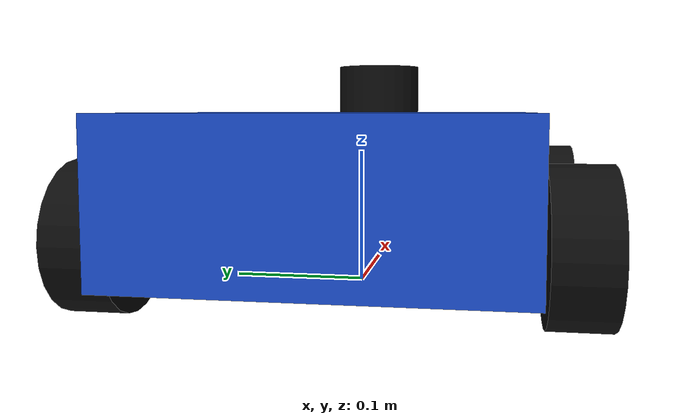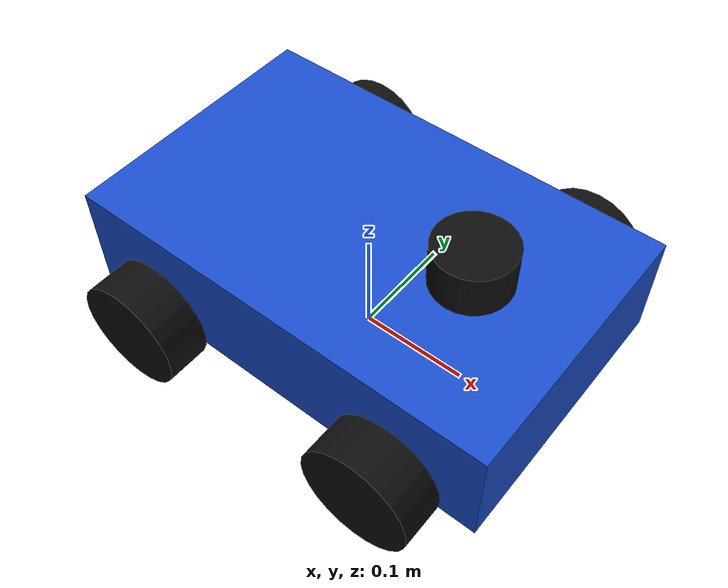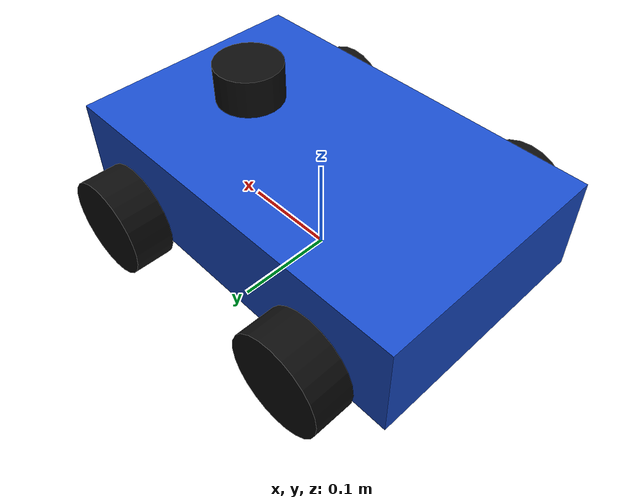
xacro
<?xml version="1.0"?>
<robot xmlns:xacro="http://www.ros.org/wiki/xacro" name="four_wheel_robot">

  <!-- Dimensions (meters / kg) -->
  <xacro:property name="chassis_l" value="0.40"/>
  <xacro:property name="chassis_w" value="0.25"/>
  <xacro:property name="chassis_h" value="0.10"/>
  <xacro:property name="chassis_m" value="5.0"/>
  <xacro:property name="wheel_r" value="0.05"/>
  <xacro:property name="wheel_w" value="0.04"/>
  <xacro:property name="wheel_m" value="0.5"/>
  <xacro:property name="wheel_x" value="0.12"/>
  <xacro:property name="wheel_y" value="0.15"/>

  <material name="blue"><color rgba="0.1 0.3 0.8 1"/></material>
  <material name="black"><color rgba="0.05 0.05 0.05 1"/></material>

  <!-- Links -->
  <link name="base_footprint"/>

  <joint name="base_footprint_joint" type="fixed">
    <parent link="base_footprint"/>
    <child link="base_link"/>
    <origin xyz="0 0 ${wheel_r + 0.03}" rpy="0 0 0"/>
  </joint>

  <link name="base_link">
    <visual>
      <geometry><box size="${chassis_l} ${chassis_w} ${chassis_h}"/></geometry>
      <material name="blue"/>
    </visual>
    <collision>
      <geometry><box size="${chassis_l} ${chassis_w} ${chassis_h}"/></geometry>
    </collision>
    <inertial>
      <mass value="${chassis_m}"/>
      <inertia ixx="0.0302" ixy="0" ixz="0" iyy="0.0708" iyz="0" izz="0.0927"/>
    </inertial>
  </link>

  <!-- Wheel macro: y_sign = +1 left, -1 right -->
  <xacro:macro name="wheel" params="name x y">
    <link name="${name}">
      <visual>
        <geometry><cylinder radius="${wheel_r}" length="${wheel_w}"/></geometry>
        <material name="black"/>
      </visual>
      <collision>
        <geometry><cylinder radius="${wheel_r}" length="${wheel_w}"/></geometry>
      </collision>
      <inertial>
        <mass value="${wheel_m}"/>
        <inertia ixx="0.000379" ixy="0" ixz="0" iyy="0.000379" iyz="0" izz="0.000625"/>
      </inertial>
    </link>

    <joint name="${name}_joint" type="continuous">
      <parent link="base_link"/>
      <child link="${name}"/>
      <origin xyz="${x} ${y} -0.03" rpy="-1.5708 0 0"/>
      <axis xyz="0 0 1"/>
    </joint>

    <gazebo reference="${name}">
      <mu1>1.0</mu1>
      <mu2>0.3</mu2>
      <kp>1000000.0</kp>
      <kd>100.0</kd>
    </gazebo>
  </xacro:macro>

  <xacro:wheel name="front_left_wheel"  x="${wheel_x}"  y="${wheel_y}"/>
  <xacro:wheel name="rear_left_wheel"   x="${-wheel_x}" y="${wheel_y}"/>
  <xacro:wheel name="front_right_wheel" x="${wheel_x}"  y="${-wheel_y}"/>
  <xacro:wheel name="rear_right_wheel"  x="${-wheel_x}" y="${-wheel_y}"/>

  <!-- Lidar -->
  <link name="lidar_link">
    <visual>
      <geometry><cylinder radius="0.035" length="0.04"/></geometry>
      <material name="black"/>
    </visual>
    <collision>
      <geometry><cylinder radius="0.035" length="0.04"/></geometry>
    </collision>
    <inertial>
      <mass value="0.1"/>
      <inertia ixx="0.0001" ixy="0" ixz="0" iyy="0.0001" iyz="0" izz="0.0001"/>
    </inertial>
  </link>

  <joint name="lidar_joint" type="fixed">
    <parent link="base_link"/>
    <child link="lidar_link"/>
    <origin xyz="0.1 0 0.07" rpy="0 0 0"/>
  </joint>

  <gazebo reference="lidar_link">
    <sensor name="lidar" type="ray">
      <always_on>true</always_on>
      <update_rate>10</update_rate>
      <visualize>false</visualize>
      <ray>
        <scan>
          <horizontal>
            <samples>360</samples>
            <min_angle>-3.14159</min_angle>
            <max_angle>3.14159</max_angle>
          </horizontal>
        </scan>
        <range>
          <min>0.12</min>
          <max>8.0</max>
          <resolution>0.01</resolution>
        </range>
      </ray>
      <plugin name="lidar_plugin" filename="libgazebo_ros_ray_sensor.so">
        <ros>
          <remapping>~/out:=scan</remapping>
        </ros>
        <output_type>sensor_msgs/LaserScan</output_type>
        <frame_name>lidar_link</frame_name>
      </plugin>
    </sensor>
  </gazebo>

  <!-- ros2_control -->
  <ros2_control name="GazeboSystem" type="system">
    <hardware>
      <plugin>gazebo_ros2_control/GazeboSystem</plugin>
    </hardware>
    <xacro:macro name="wheel_iface" params="name">
      <joint name="${name}_joint">
        <command_interface name="velocity">
          <param name="min">-20</param>
          <param name="max">20</param>
        </command_interface>
        <state_interface name="position"/>
        <state_interface name="velocity"/>
      </joint>
    </xacro:macro>
    <xacro:wheel_iface name="front_left_wheel"/>
    <xacro:wheel_iface name="rear_left_wheel"/>
    <xacro:wheel_iface name="front_right_wheel"/>
    <xacro:wheel_iface name="rear_right_wheel"/>
  </ros2_control>

  <gazebo>
    <plugin filename="libgazebo_ros2_control.so" name="gazebo_ros2_control">
      <parameters>$(find four_wheel_robot)/config/controllers.yaml</parameters>
    </plugin>
  </gazebo>

</robot>
